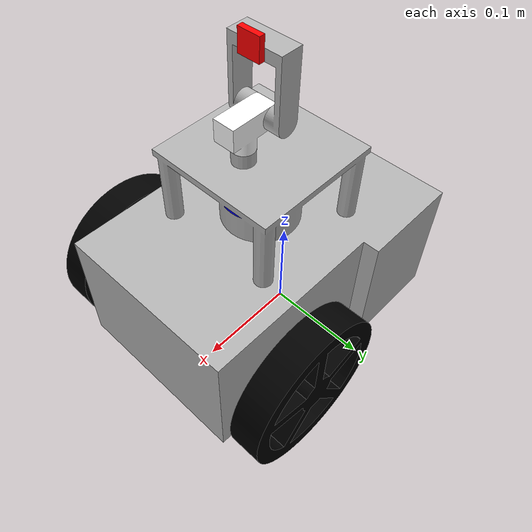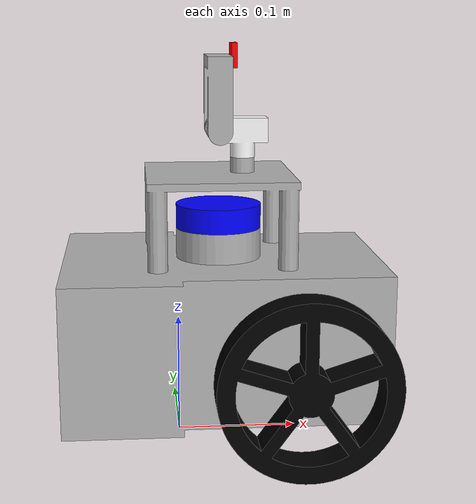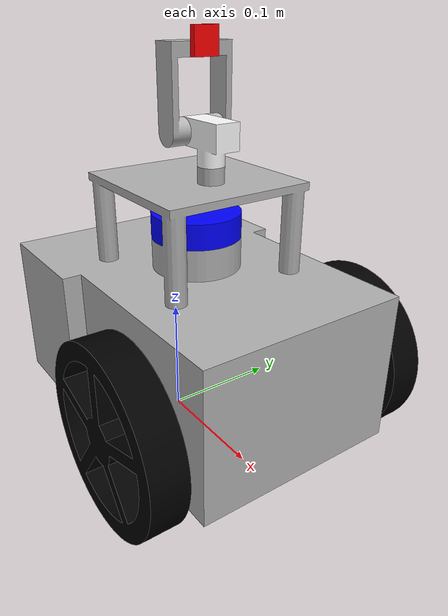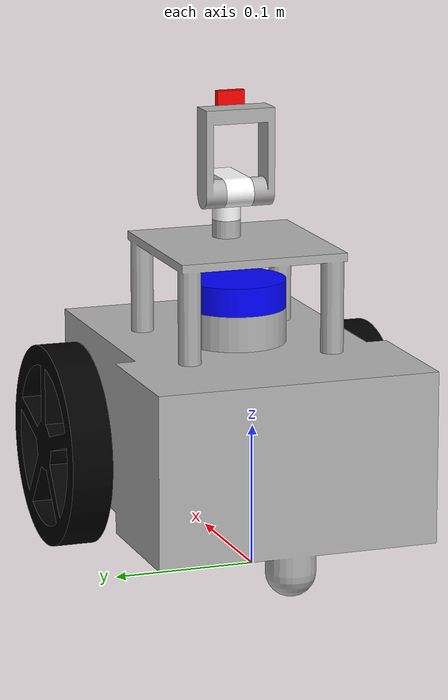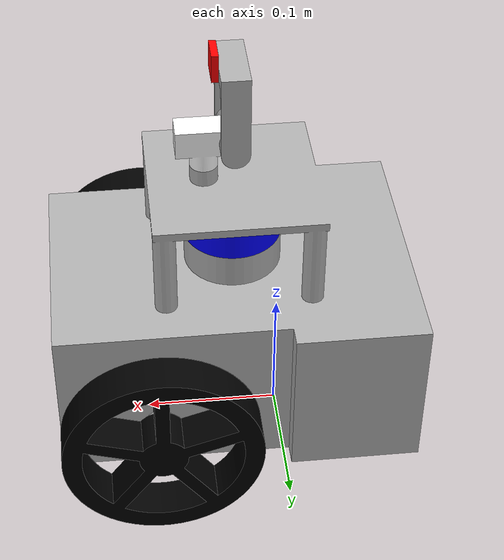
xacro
<?xml version="1.0" ?>
<robot name="asc_robot" xmlns:xacro="http://www.ros.org/wiki/xacro">

<xacro:include filename="$(find asc_robot_description)/urdf/materials.xacro" />
<xacro:include filename="$(find asc_robot_description)/urdf/asc_robot.trans" />
<xacro:include filename="$(find asc_robot_description)/urdf/asc_robot.gazebo" />
<link name="base_link">
  <inertial>
    <origin xyz="0.030721038390233324 -2.4231983503374707e-17 0.09610116641875463" rpy="0 0 0"/>
    <mass value="4.804201101025099"/>
    <inertia ixx="0.020655" iyy="0.034805" izz="0.04017" ixy="-0.0" iyz="-0.0" ixz="-0.000225"/>
  </inertial>
  <visual>
    <origin xyz="0 0 0" rpy="0 0 0"/>
    <geometry>
      <mesh filename="package://asc_robot_description/meshes/base_link.stl" scale="0.001 0.001 0.001"/>
    </geometry>
    <material name="silver"/>
  </visual>
  <collision>
    <origin xyz="0 0 0" rpy="0 0 0"/>
    <geometry>
      <mesh filename="package://asc_robot_description/meshes/base_link.stl" scale="0.001 0.001 0.001"/>
    </geometry>
  </collision>
</link>

<link name="left_wheel_1">
  <inertial>
    <origin xyz="5.551115123125783e-17 0.014499999999999985 8.326672684688674e-17" rpy="0 0 0"/>
    <mass value="0.2379263942673854"/>
    <inertia ixx="0.000395" iyy="0.000757" izz="0.000395" ixy="0.0" iyz="-0.0" ixz="0.0"/>
  </inertial>
  <visual>
    <origin xyz="-0.095 -0.0945 -0.072" rpy="0 0 0"/>
    <geometry>
      <mesh filename="package://asc_robot_description/meshes/left_wheel_1.stl" scale="0.001 0.001 0.001"/>
    </geometry>
    <material name="black"/>
  </visual>
  <collision>
    <origin xyz="-0.095 -0.0945 -0.072" rpy="0 0 0"/>
    <geometry>
      <mesh filename="package://asc_robot_description/meshes/left_wheel_1.stl" scale="0.001 0.001 0.001"/>
    </geometry>
  </collision>
</link>

<link name="right_wheel_1">
  <inertial>
    <origin xyz="1.1102230246251565e-16 -0.014499999999999999 5.551115123125783e-17" rpy="0 0 0"/>
    <mass value="0.2379263942673856"/>
    <inertia ixx="0.000395" iyy="0.000757" izz="0.000395" ixy="0.0" iyz="-0.0" ixz="0.0"/>
  </inertial>
  <visual>
    <origin xyz="-0.095 0.0945 -0.072" rpy="0 0 0"/>
    <geometry>
      <mesh filename="package://asc_robot_description/meshes/right_wheel_1.stl" scale="0.001 0.001 0.001"/>
    </geometry>
    <material name="black"/>
  </visual>
  <collision>
    <origin xyz="-0.095 0.0945 -0.072" rpy="0 0 0"/>
    <geometry>
      <mesh filename="package://asc_robot_description/meshes/right_wheel_1.stl" scale="0.001 0.001 0.001"/>
    </geometry>
  </collision>
</link>

<link name="Lidar_1">
  <inertial>
    <origin xyz="-2.0816681711721685e-17 0.0 0.009999999999999981" rpy="0 0 0"/>
    <mass value="0.08252224998388268"/>
    <inertia ixx="2.8e-05" iyy="2.8e-05" izz="5.1e-05" ixy="-0.0" iyz="0.0" ixz="-0.0"/>
  </inertial>
  <visual>
    <origin xyz="-0.034 -0.0 -0.178" rpy="0 0 0"/>
    <geometry>
      <mesh filename="package://asc_robot_description/meshes/Lidar_1.stl" scale="0.001 0.001 0.001"/>
    </geometry>
    <material name="blue"/>
  </visual>
  <collision>
    <origin xyz="-0.034 -0.0 -0.178" rpy="0 0 0"/>
    <geometry>
      <mesh filename="package://asc_robot_description/meshes/Lidar_1.stl" scale="0.001 0.001 0.001"/>
    </geometry>
  </collision>
</link>

<link name="Pan_1">
  <inertial>
    <origin xyz="-0.0033016845833761035 1.5400658143278853e-18 0.019733744288745192" rpy="0 0 0"/>
    <mass value="0.03287273144557227"/>
    <inertia ixx="3e-06" iyy="8e-06" izz="7e-06" ixy="-0.0" iyz="-0.0" ixz="0.0"/>
  </inertial>
  <visual>
    <origin xyz="-0.054 -0.0 -0.2365" rpy="0 0 0"/>
    <geometry>
      <mesh filename="package://asc_robot_description/meshes/Pan_1.stl" scale="0.001 0.001 0.001"/>
    </geometry>
    <material name="white"/>
  </visual>
  <collision>
    <origin xyz="-0.054 -0.0 -0.2365" rpy="0 0 0"/>
    <geometry>
      <mesh filename="package://asc_robot_description/meshes/Pan_1.stl" scale="0.001 0.001 0.001"/>
    </geometry>
  </collision>
</link>

<link name="Tilt_1">
  <inertial>
    <origin xyz="-6.938893903907228e-18 -0.009999999999999995 0.02848186459510249" rpy="0 0 0"/>
    <mass value="0.03969192382841363"/>
    <inertia ixx="3.7e-05" iyy="2.4e-05" izz="1.5e-05" ixy="0.0" iyz="-0.0" ixz="-0.0"/>
  </inertial>
  <visual>
    <origin xyz="-0.034 -0.01 -0.259" rpy="0 0 0"/>
    <geometry>
      <mesh filename="package://asc_robot_description/meshes/Tilt_1.stl" scale="0.001 0.001 0.001"/>
    </geometry>
    <material name="silver"/>
  </visual>
  <collision>
    <origin xyz="-0.034 -0.01 -0.259" rpy="0 0 0"/>
    <geometry>
      <mesh filename="package://asc_robot_description/meshes/Tilt_1.stl" scale="0.001 0.001 0.001"/>
    </geometry>
  </collision>
</link>

<link name="Camera_1">
  <inertial>
    <origin xyz="0.002500000000000009 4.44089209850061e-18 0.0" rpy="0 0 0"/>
    <mass value="0.00276000000000001"/>
    <inertia ixx="0.0" iyy="0.0" izz="0.0" ixy="0.0" iyz="-0.0" ixz="0.0"/>
  </inertial>
  <visual>
    <origin xyz="-0.044 -0.0 -0.319" rpy="0 0 0"/>
    <geometry>
      <mesh filename="package://asc_robot_description/meshes/Camera_1.stl" scale="0.001 0.001 0.001"/>
    </geometry>
    <material name="red"/>
  </visual>
  <collision>
    <origin xyz="-0.044 -0.0 -0.319" rpy="0 0 0"/>
    <geometry>
      <mesh filename="package://asc_robot_description/meshes/Camera_1.stl" scale="0.001 0.001 0.001"/>
    </geometry>
  </collision>
</link>

<joint name="left_rev" type="continuous">
  <origin xyz="0.095 0.0945 0.072" rpy="0 0 0"/>
  <parent link="base_link"/>
  <child link="left_wheel_1"/>
  <axis xyz="0.0 1.0 0.0"/>
</joint>

<joint name="right_rev" type="continuous">
  <origin xyz="0.095 -0.0945 0.072" rpy="0 0 0"/>
  <parent link="base_link"/>
  <child link="right_wheel_1"/>
  <axis xyz="0.0 1.0 0.0"/>
</joint>

<joint name="lidar_stick" type="fixed">
  <origin xyz="0.034 0.0 0.178" rpy="0 0 0"/>
  <parent link="base_link"/>
  <child link="Lidar_1"/>
</joint>

<joint name="pan_rev" type="fixed">
  <origin xyz="0.054 0.0 0.2365" rpy="0 0 0"/>
  <parent link="base_link"/>
  <child link="Pan_1"/>
  <axis xyz="0.0 0.0 1.0"/>
</joint>

<joint name="tilt_rev" type="fixed">
  <origin xyz="-0.02 0.01 0.0225" rpy="0 0 0"/>
  <parent link="Pan_1"/>
  <child link="Tilt_1"/>
  <axis xyz="0.0 1.0 0.0"/>
</joint>

<joint name="cam_stick" type="fixed">
  <origin xyz="0.01 -0.01 0.06" rpy="0 0 0"/>
  <parent link="Tilt_1"/>
  <child link="Camera_1"/>
</joint>

</robot>

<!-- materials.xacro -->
<robot name="asc_robot" xmlns:xacro="http://www.ros.org/wiki/xacro" >

<material name="silver">
  <color rgba="0.700 0.700 0.700 1.000"/>
</material>

<material name="black">
  <color rgba="0.000 0.000 0.000 1.000"/>
</material>

<material name="white">
  <color rgba="1.000 1.000 1.000 1.000"/>
</material>

<material name="red">
  <color rgba="1.000 0.000 0.000 1.000"/>
</material>

<material name="blue">
  <color rgba="0.000 0.000 1.000 1.000"/>
</material>

</robot>

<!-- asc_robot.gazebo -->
<robot name="asc_robot" xmlns:xacro="http://www.ros.org/wiki/xacro" >

<xacro:property name="body_color" value="Gazebo/Silver" />

<gazebo>
  <plugin name="control" filename="libgazebo_ros_control.so"/>
</gazebo>
<gazebo reference="base_link">
  <material>${body_color}</material>
  <mu1>0.1</mu1>
  <mu2>0.1</mu2>
  <selfCollide>true</selfCollide>
  <gravity>true</gravity>
</gazebo>

<gazebo reference="left_wheel_1">
  <material>${body_color}</material>
  <mu1>1500</mu1>
  <mu2>1500</mu2>
  <selfCollide>true</selfCollide>
</gazebo>

<gazebo reference="right_wheel_1">
  <material>${body_color}</material>
  <mu1>1500</mu1>
  <mu2>1500</mu2>
  <selfCollide>true</selfCollide>
</gazebo>

<gazebo reference="Lidar_1">
  <material>${body_color}</material>
  <mu1>1500</mu1>
  <mu2>1500</mu2>
  <selfCollide>true</selfCollide>
</gazebo>

<gazebo reference="Pan_1">
  <material>${body_color}</material>
  <mu1>0.2</mu1>
  <mu2>0.2</mu2>
  <selfCollide>true</selfCollide>
</gazebo>

<gazebo reference="Tilt_1">
  <material>${body_color}</material>
  <mu1>0.2</mu1>
  <mu2>0.2</mu2>
  <selfCollide>true</selfCollide>
</gazebo>

<gazebo reference="Camera_1">
  <material>${body_color}</material>
  <mu1>0.2</mu1>
  <mu2>0.2</mu2>
  <selfCollide>true</selfCollide>
</gazebo>

<!-- The following plugin is for differential wheel -->
<gazebo>
  <plugin name="differential_drive_controller" filename="libgazebo_ros_diff_drive.so">

    <!-- Plugin update rate in Hz -->
    <updateRate>10</updateRate>

    <!-- Name of left joint, defaults to `left_joint` -->
    <leftJoint>left_rev</leftJoint>

    <!-- Name of right joint, defaults to `right_joint` -->
    <rightJoint>right_rev</rightJoint>

    <!-- The distance from the center of one wheel to the other, in meters, defaults to 0.34 m -->
    <wheelSeparation>0.218</wheelSeparation>

    <!-- Diameter of the wheels, in meters, defaults to 0.15 m -->
    <wheelDiameter>0.144</wheelDiameter>

    <!-- Wheel acceleration, in rad/s^2, defaults to 0.0 rad/s^2 -->
    <wheelAcceleration>1.0</wheelAcceleration>

    <!-- Maximum torque which the wheels can produce, in Nm, defaults to 5 Nm -->
    <wheelTorque>20</wheelTorque>

    <!-- Topic to receive geometry_msgs/Twist message commands, defaults to `cmd_vel` -->
    <commandTopic>cmd_vel</commandTopic>

    <!-- Topic to publish nav_msgs/Odometry messages, defaults to `odom` -->
    <odometryTopic>odom</odometryTopic>

    <!-- Odometry frame, defaults to `odom` -->
    <odometryFrame>odom</odometryFrame>

    <!-- Robot frame to calculate odometry from, defaults to `base_footprint` -->
    <robotBaseFrame>base_link</robotBaseFrame>

    <!-- Odometry source, 0 for ENCODER, 1 for WORLD, defaults to WORLD -->
    <odometrySource>1</odometrySource>

    <!-- Set to true to publish transforms for the wheel links, defaults to false -->
    <publishWheelTF>true</publishWheelTF>

    <!-- Set to true to publish transforms for the odometry, defaults to true -->
    <publishOdom>true</publishOdom>

    <!-- Set to true to publish sensor_msgs/JointState on /joint_states for the wheel joints, defaults to false -->
    <publishWheelJointState>true</publishWheelJointState>

    <!-- Set to true to swap right and left wheels, defaults to true -->
    <legacyMode>false</legacyMode>
  </plugin>
</gazebo>

<!-- The following plugin is for lidar -->
<!-- hokuyo -->
<gazebo reference="Lidar_1">
  <sensor type="ray" name="head_hokuyo_sensor">
    <pose>0 0 0 0 0 0</pose>
    <visualize>true</visualize>
    <update_rate>5.5</update_rate>
    <ray>
      <scan>
        <horizontal>
          <samples>360</samples>
          <resolution>1</resolution>
          <min_angle>0</min_angle>
          <max_angle>6.2831853</max_angle>
        </horizontal>
      </scan>
      <range>
        <min>0.15</min>
        <max>12.0</max>
        <resolution>0.01</resolution>
      </range>
      <noise>
        <type>gaussian</type>
        <mean>0.0</mean>
        <stddev>0.01</stddev>
      </noise>
    </ray>
    <plugin name="gazebo_ros_head_hokuyo_controller" filename="libgazebo_ros_laser.so">
      <topicName>/scan</topicName>
      <frameName>Lidar_1</frameName>
    </plugin>
  </sensor>
</gazebo>

<!-- The following plugin is for camera -->
<!-- camera -->
<gazebo reference="Camera_1">
  <sensor type="camera" name="camera1">
    <update_rate>30.0</update_rate>
    <camera name="head">
      <horizontal_fov>1.3962634</horizontal_fov>
      <image>
        <width>1920</width>
        <height>1080</height>
        <format>R8G8B8</format>
      </image>
      <clip>
        <near>0.02</near>
        <far>300</far>
      </clip>
      <noise>
        <type>gaussian</type>
        <!-- Noise is sampled independently per pixel on each frame.
              That pixel's noise value is added to each of its color
              channels, which at that point lie in the range [0,1]. -->
        <mean>0.0</mean>
        <stddev>0.007</stddev>
      </noise>
    </camera>
    <plugin name="camera_controller" filename="libgazebo_ros_camera.so">
      <alwaysOn>true</alwaysOn>
      <updateRate>0.0</updateRate>
      <cameraName>rrbot/camera1</cameraName>
      <imageTopicName>image_raw</imageTopicName>
      <cameraInfoTopicName>camera_info</cameraInfoTopicName>
      <frameName>Camera_1</frameName>
      <hackBaseline>0.07</hackBaseline>
      <distortionK1>0.0</distortionK1>
      <distortionK2>0.0</distortionK2>
      <distortionK3>0.0</distortionK3>
      <distortionT1>0.0</distortionT1>
      <distortionT2>0.0</distortionT2>
    </plugin>
  </sensor>
</gazebo>

</robot>
